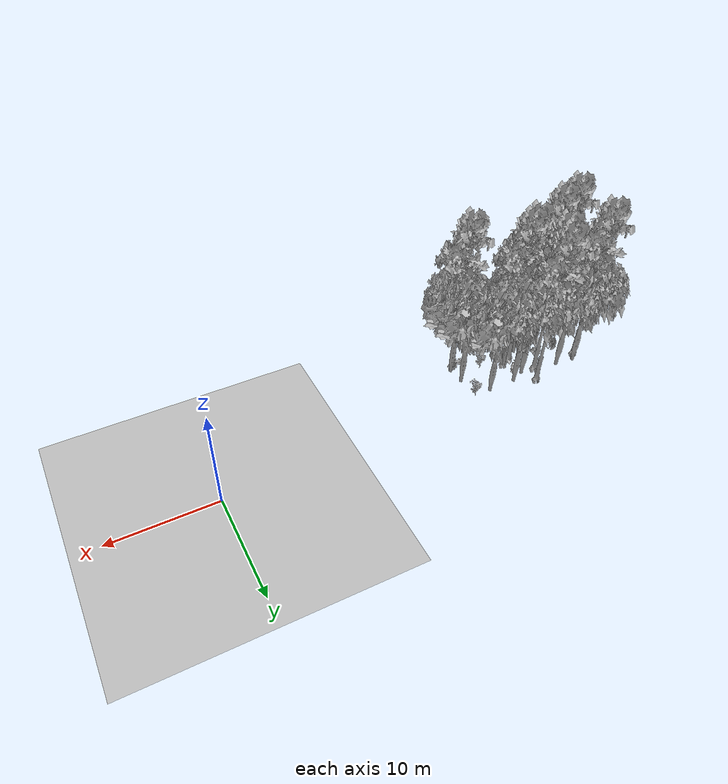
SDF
<sdf version="1.7">
 <world name="default">
  <model name="ground_plane">
   <static>1</static>
   <link name="link">
    <collision name="collision">
     <pose>-50 0 0 0 -0 0</pose>
     <geometry><plane><normal>0 0 1</normal><size>80 80</size></plane></geometry>
     <surface><contact><ode><min_depth>0.01</min_depth><max_vel>0</max_vel></ode></contact></surface>
    </collision>
    <visual name="grass">
     <cast_shadows>0</cast_shadows>
     <geometry>
      <mesh>
       <scale>0.46714285714285714 0.46714285714285714 0.1</scale>
       <uri>file://grass_plane/meshes/grass_plane.dae</uri>
      </mesh>
     </geometry>
    </visual>
   </link>
  </model>
  <model name="Tree 101">
   <static>1</static>
   <pose>-32.4213367891617 -3.7213891850029057 0 1.57079 -0 0</pose>
   <link name="link">
    <collision name="collision">
     <geometry><mesh><scale>3.5 5 3.5</scale><uri>model://tree_2/meshes/tree_2.obj</uri></mesh></geometry>
    </collision>
    <visual name="visual">
     <geometry><mesh><scale>3.5 5 3.5</scale><uri>model://tree_2/meshes/tree_2.obj</uri></mesh></geometry>
    </visual>
   </link>
  </model>
  <model name="Tree 159">
   <static>1</static>
   <pose>-26.085064075185073 -5.87859446906603 0 1.57079 -0 0</pose>
   <link name="link">
    <collision name="collision">
     <geometry><mesh><scale>3.5 5 3.5</scale><uri>model://tree_9/meshes/tree_9.obj</uri></mesh></geometry>
    </collision>
    <visual name="visual">
     <geometry><mesh><scale>3.5 5 3.5</scale><uri>model://tree_9/meshes/tree_9.obj</uri></mesh></geometry>
    </visual>
   </link>
  </model>
  <model name="Tree 191">
   <static>1</static>
   <pose>-32.424899236703666 -0.6196919953822118 0 1.57079 -0 0</pose>
   <link name="link">
    <collision name="collision">
     <geometry><mesh><scale>3.5 5 3.5</scale><uri>model://tree_9/meshes/tree_9.obj</uri></mesh></geometry>
    </collision>
    <visual name="visual">
     <geometry><mesh><scale>3.5 5 3.5</scale><uri>model://tree_9/meshes/tree_9.obj</uri></mesh></geometry>
    </visual>
   </link>
  </model>
  <model name="Tree 216">
   <static>1</static>
   <pose>-31.529106549983076 -1.8192256553085002 0 1.57079 -0 0</pose>
   <link name="link">
    <collision name="collision">
     <geometry><mesh><scale>3.5 5 3.5</scale><uri>model://tree_2/meshes/tree_2.obj</uri></mesh></geometry>
    </collision>
    <visual name="visual">
     <geometry><mesh><scale>3.5 5 3.5</scale><uri>model://tree_2/meshes/tree_2.obj</uri></mesh></geometry>
    </visual>
   </link>
  </model>
  <model name="Tree 221">
   <static>1</static>
   <pose>-32.65578579774903 -4.699272833017972 0 1.57079 -0 0</pose>
   <link name="link">
    <collision name="collision">
     <geometry><mesh><scale>3.5 5 3.5</scale><uri>model://tree_2/meshes/tree_2.obj</uri></mesh></geometry>
    </collision>
    <visual name="visual">
     <geometry><mesh><scale>3.5 5 3.5</scale><uri>model://tree_2/meshes/tree_2.obj</uri></mesh></geometry>
    </visual>
   </link>
  </model>
  <model name="Tree 247">
   <static>1</static>
   <pose>-37.20026548510416 -1.1624879718710588 0 1.57079 -0 0</pose>
   <link name="link">
    <collision name="collision">
     <geometry><mesh><scale>3.5 5 3.5</scale><uri>model://tree_2/meshes/tree_2.obj</uri></mesh></geometry>
    </collision>
    <visual name="visual">
     <geometry><mesh><scale>3.5 5 3.5</scale><uri>model://tree_2/meshes/tree_2.obj</uri></mesh></geometry>
    </visual>
   </link>
  </model>
  <model name="Tree 255">
   <static>1</static>
   <pose>-38.089720146397696 -2.1210612258023644 0 1.57079 -0 0</pose>
   <link name="link">
    <collision name="collision">
     <geometry><mesh><scale>3.5 5 3.5</scale><uri>model://tree_9/meshes/tree_9.obj</uri></mesh></geometry>
    </collision>
    <visual name="visual">
     <geometry><mesh><scale>3.5 5 3.5</scale><uri>model://tree_9/meshes/tree_9.obj</uri></mesh></geometry>
    </visual>
   </link>
  </model>
  <model name="Tree 288">
   <static>1</static>
   <pose>-25.484088690362533 -5.067738727279192 0 1.57079 -0 0</pose>
   <link name="link">
    <collision name="collision">
     <geometry><mesh><scale>3.5 5 3.5</scale><uri>model://tree_2/meshes/tree_2.obj</uri></mesh></geometry>
    </collision>
    <visual name="visual">
     <geometry><mesh><scale>3.5 5 3.5</scale><uri>model://tree_2/meshes/tree_2.obj</uri></mesh></geometry>
    </visual>
   </link>
  </model>
  <model name="Tree 329">
   <static>1</static>
   <pose>-27.4415128880891 -1.1585080125681202 0 1.57079 -0 0</pose>
   <link name="link">
    <collision name="collision">
     <geometry><mesh><scale>3.5 5 3.5</scale><uri>model://tree_2/meshes/tree_2.obj</uri></mesh></geometry>
    </collision>
    <visual name="visual">
     <geometry><mesh><scale>3.5 5 3.5</scale><uri>model://tree_2/meshes/tree_2.obj</uri></mesh></geometry>
    </visual>
   </link>
  </model>
  <model name="Tree 339">
   <static>1</static>
   <pose>-31.757594931193914 -4.30862316693662 0 1.57079 -0 0</pose>
   <link name="link">
    <collision name="collision">
     <geometry><mesh><scale>3.5 5 3.5</scale><uri>model://tree_9/meshes/tree_9.obj</uri></mesh></geometry>
    </collision>
    <visual name="visual">
     <geometry><mesh><scale>3.5 5 3.5</scale><uri>model://tree_9/meshes/tree_9.obj</uri></mesh></geometry>
    </visual>
   </link>
  </model>
  <model name="Tree 382">
   <static>1</static>
   <pose>-33.1787267701189 -2.0297832747659186 0 1.57079 -0 0</pose>
   <link name="link">
    <collision name="collision">
     <geometry><mesh><scale>3.5 5 3.5</scale><uri>model://tree_9/meshes/tree_9.obj</uri></mesh></geometry>
    </collision>
    <visual name="visual">
     <geometry><mesh><scale>3.5 5 3.5</scale><uri>model://tree_9/meshes/tree_9.obj</uri></mesh></geometry>
    </visual>
   </link>
  </model>
  <model name="Tree 408">
   <static>1</static>
   <pose>-35.3486286397046 -1.3417939917936934 0 1.57079 -0 0</pose>
   <link name="link">
    <collision name="collision">
     <geometry><mesh><scale>3.5 5 3.5</scale><uri>model://tree_2/meshes/tree_2.obj</uri></mesh></geometry>
    </collision>
    <visual name="visual">
     <geometry><mesh><scale>3.5 5 3.5</scale><uri>model://tree_2/meshes/tree_2.obj</uri></mesh></geometry>
    </visual>
   </link>
  </model>
  <model name="Tree 410">
   <static>1</static>
   <pose>-35.687688902179595 -5.858461507248975 0 1.57079 -0 0</pose>
   <link name="link">
    <collision name="collision">
     <geometry><mesh><scale>3.5 5 3.5</scale><uri>model://tree_9/meshes/tree_9.obj</uri></mesh></geometry>
    </collision>
    <visual name="visual">
     <geometry><mesh><scale>3.5 5 3.5</scale><uri>model://tree_9/meshes/tree_9.obj</uri></mesh></geometry>
    </visual>
   </link>
  </model>
  <model name="Tree 411">
   <static>1</static>
   <pose>-30.210533460811586 -1.2369573667038196 0 1.57079 -0 0</pose>
   <link name="link">
    <collision name="collision">
     <geometry><mesh><scale>3.5 5 3.5</scale><uri>model://tree_2/meshes/tree_2.obj</uri></mesh></geometry>
    </collision>
    <visual name="visual">
     <geometry><mesh><scale>3.5 5 3.5</scale><uri>model://tree_2/meshes/tree_2.obj</uri></mesh></geometry>
    </visual>
   </link>
  </model>
  <model name="Tree 510">
   <static>1</static>
   <pose>-38.12736453036033 -6.790667526401897 0 1.57079 -0 0</pose>
   <link name="link">
    <collision name="collision">
     <geometry><mesh><scale>3.5 5 3.5</scale><uri>model://tree_9/meshes/tree_9.obj</uri></mesh></geometry>
    </collision>
    <visual name="visual">
     <geometry><mesh><scale>3.5 5 3.5</scale><uri>model://tree_9/meshes/tree_9.obj</uri></mesh></geometry>
    </visual>
   </link>
  </model>
  <model name="Tree 551">
   <static>1</static>
   <pose>-25.62802224120584 -3.4350552801598866 0 1.57079 -0 0</pose>
   <link name="link">
    <collision name="collision">
     <geometry><mesh><scale>3.5 5 3.5</scale><uri>model://tree_2/meshes/tree_2.obj</uri></mesh></geometry>
    </collision>
    <visual name="visual">
     <geometry><mesh><scale>3.5 5 3.5</scale><uri>model://tree_2/meshes/tree_2.obj</uri></mesh></geometry>
    </visual>
   </link>
  </model>
  <model name="Tree 609">
   <static>1</static>
   <pose>-30.765379532872554 -3.8270486628450158 0 1.57079 -0 0</pose>
   <link name="link">
    <collision name="collision">
     <geometry><mesh><scale>3.5 5 3.5</scale><uri>model://tree_9/meshes/tree_9.obj</uri></mesh></geometry>
    </collision>
    <visual name="visual">
     <geometry><mesh><scale>3.5 5 3.5</scale><uri>model://tree_9/meshes/tree_9.obj</uri></mesh></geometry>
    </visual>
   </link>
  </model>
  <model name="Bush 130">
   <static>1</static>
   <pose>-30.380493531475295 -6.509652270216144 0 1.57079 -0 0</pose>
   <link name="link">
    <collision name="collision">
     <geometry><mesh><scale>2 2 2</scale><uri>model://bush_2/meshes/bush_2.obj</uri></mesh></geometry>
     <surface><contact><collide_without_contact>false</collide_without_contact></contact></surface>
    </collision>
    <visual name="visual">
     <geometry><mesh><scale>2 2 2</scale><uri>model://bush_2/meshes/bush_2.obj</uri></mesh></geometry>
    </visual>
   </link>
  </model>
  <model name="Bush 277">
   <static>1</static>
   <pose>-30.58713662323798 -2.0795836169258024 0 1.57079 -0 0</pose>
   <link name="link">
    <collision name="collision">
     <geometry><mesh><scale>2 2 2</scale><uri>model://bush_0/meshes/bush_0.obj</uri></mesh></geometry>
     <surface><contact><collide_without_contact>false</collide_without_contact></contact></surface>
    </collision>
    <visual name="visual">
     <geometry><mesh><scale>2 2 2</scale><uri>model://bush_0/meshes/bush_0.obj</uri></mesh></geometry>
    </visual>
   </link>
  </model>
  <model name="Bush 296">
   <static>1</static>
   <pose>-29.083847618190898 -6.632088283061947 0 1.57079 -0 0</pose>
   <link name="link">
    <collision name="collision">
     <geometry><mesh><scale>2 2 2</scale><uri>model://bush_2/meshes/bush_2.obj</uri></mesh></geometry>
     <surface><contact><collide_without_contact>false</collide_without_contact></contact></surface>
    </collision>
    <visual name="visual">
     <geometry><mesh><scale>2 2 2</scale><uri>model://bush_2/meshes/bush_2.obj</uri></mesh></geometry>
    </visual>
   </link>
  </model>
  <model name="Bush 337">
   <static>1</static>
   <pose>-34.54426100485608 -3.6775455471746596 0 1.57079 -0 0</pose>
   <link name="link">
    <collision name="collision">
     <geometry><mesh><scale>2 2 2</scale><uri>model://bush_2/meshes/bush_2.obj</uri></mesh></geometry>
     <surface><contact><collide_without_contact>false</collide_without_contact></contact></surface>
    </collision>
    <visual name="visual">
     <geometry><mesh><scale>2 2 2</scale><uri>model://bush_2/meshes/bush_2.obj</uri></mesh></geometry>
    </visual>
   </link>
  </model>
  <model name="Bush 369">
   <static>1</static>
   <pose>-25.654877150184117 -1.10148106222141 0 1.57079 -0 0</pose>
   <link name="link">
    <collision name="collision">
     <geometry><mesh><scale>2 2 2</scale><uri>model://bush_5/meshes/bush_5.obj</uri></mesh></geometry>
     <surface><contact><collide_without_contact>false</collide_without_contact></contact></surface>
    </collision>
    <visual name="visual">
     <geometry><mesh><scale>2 2 2</scale><uri>model://bush_5/meshes/bush_5.obj</uri></mesh></geometry>
    </visual>
   </link>
  </model>
  <model name="Bush 478">
   <static>1</static>
   <pose>-28.16499354663313 -4.184502748919819 0 1.57079 -0 0</pose>
   <link name="link">
    <collision name="collision">
     <geometry><mesh><scale>2 2 2</scale><uri>model://bush_5/meshes/bush_5.obj</uri></mesh></geometry>
     <surface><contact><collide_without_contact>false</collide_without_contact></contact></surface>
    </collision>
    <visual name="visual">
     <geometry><mesh><scale>2 2 2</scale><uri>model://bush_5/meshes/bush_5.obj</uri></mesh></geometry>
    </visual>
   </link>
  </model>
  <model name="Bush 512">
   <static>1</static>
   <pose>-26.53583014237862 -5.8801417228514055 0 1.57079 -0 0</pose>
   <link name="link">
    <collision name="collision">
     <geometry><mesh><scale>2 2 2</scale><uri>model://bush_2/meshes/bush_2.obj</uri></mesh></geometry>
     <surface><contact><collide_without_contact>false</collide_without_contact></contact></surface>
    </collision>
    <visual name="visual">
     <geometry><mesh><scale>2 2 2</scale><uri>model://bush_2/meshes/bush_2.obj</uri></mesh></geometry>
    </visual>
   </link>
  </model>
 </world>
</sdf>
